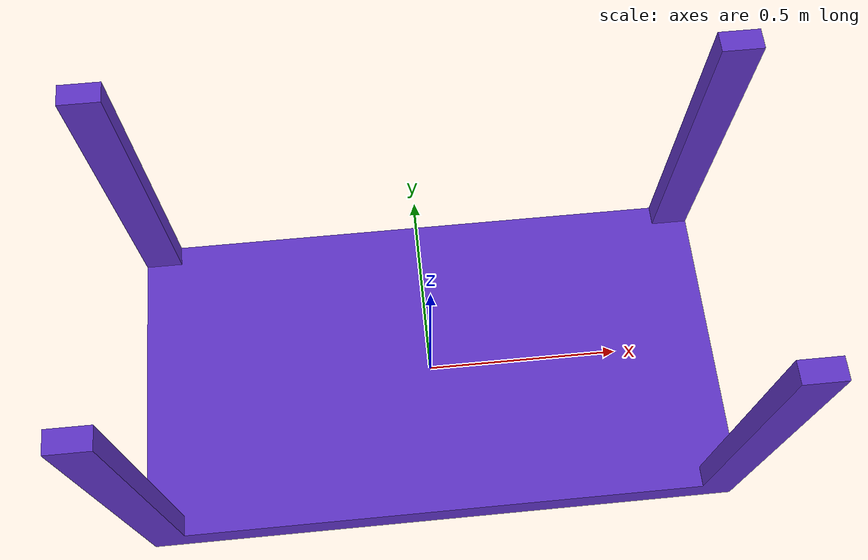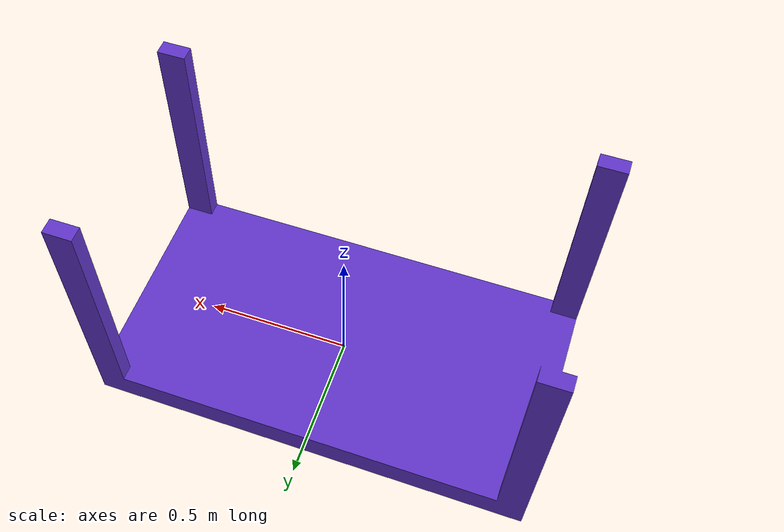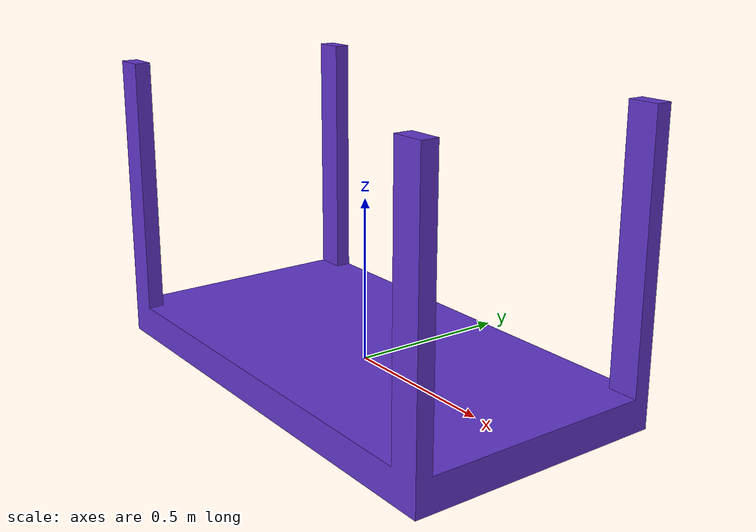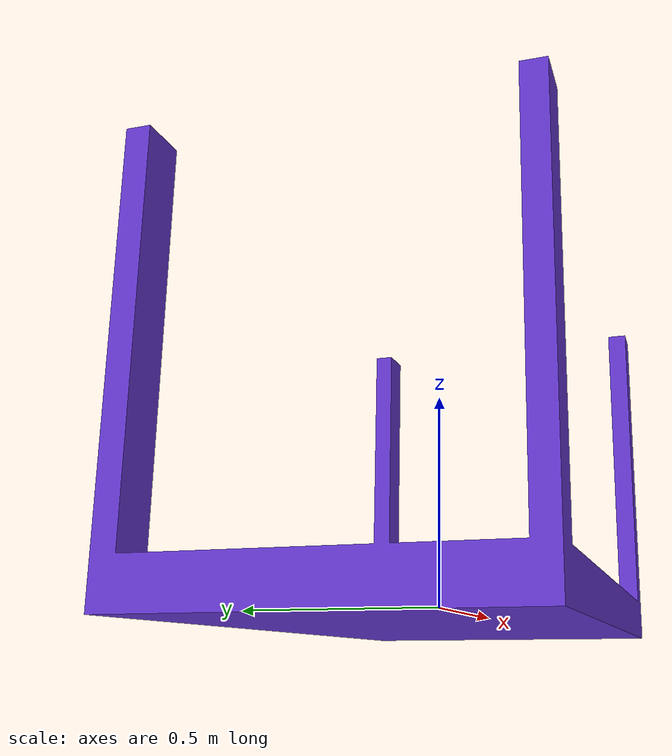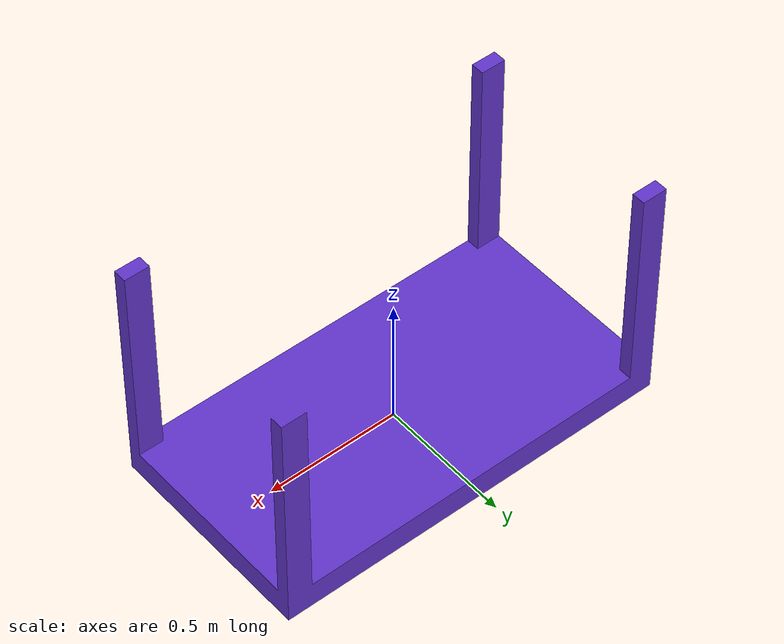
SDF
<?xml version='1.0'?>
<sdf version='1.6'>
  <model name='tableLaas'>
    <link name='link_0'>
      <inertial>
        <mass>10</mass>
      </inertial>
      <visual name='visual'>
        <geometry>
          <mesh>
            <uri>model://tableLaas/meshes/tableLaas.dae</uri>
            <scale>1 1 1</scale>
          </mesh>
        </geometry>
        </visual>
      <collision name='collision'>
        <geometry>
          <mesh>
            <uri>model://tableLaas/meshes/tableLaas.dae</uri>
          </mesh>
        </geometry>
      </collision>
    </link>
  </model>
</sdf>
